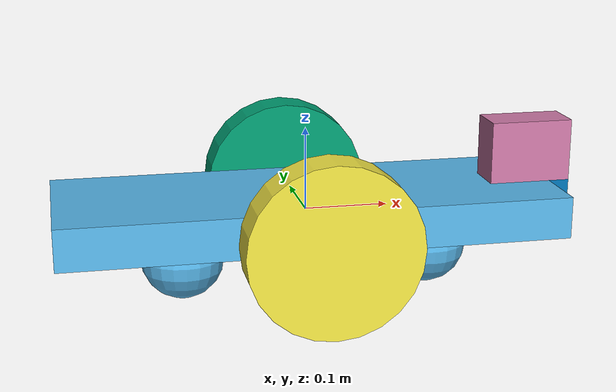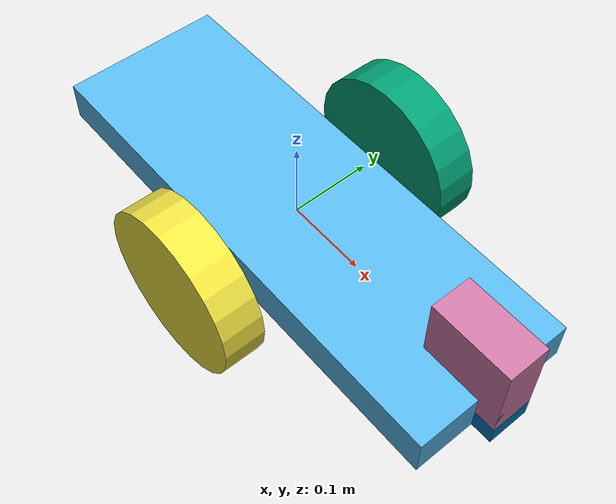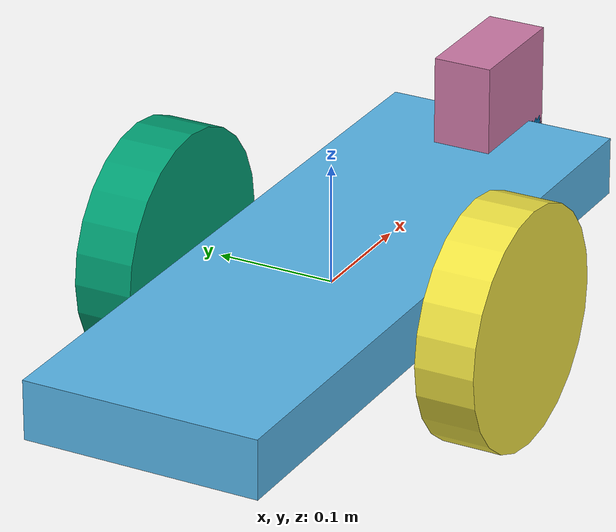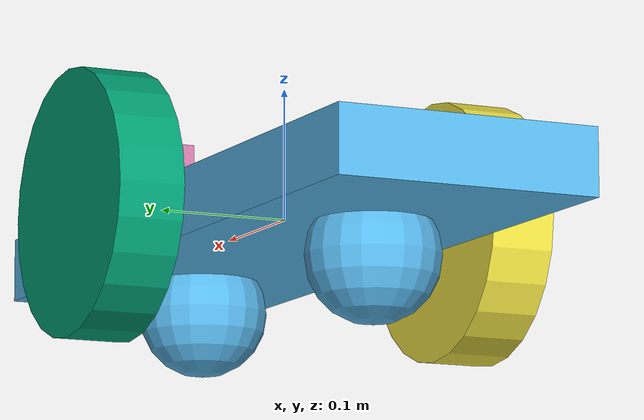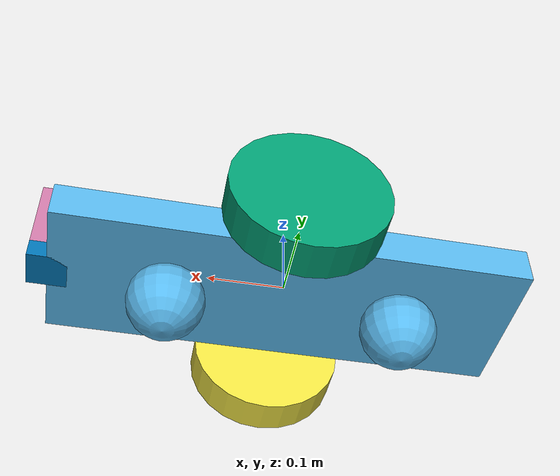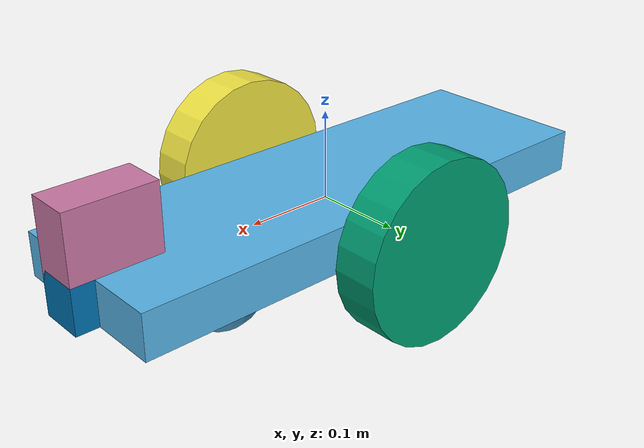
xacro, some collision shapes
<?xml version='1.0'?>
<robot name="my_robot" xmlns:xacro="http://www.ros.org/wiki/xacro">
  <xacro:include filename="$(find my_robot)/urdf/my_robot.gazebo"/>
  <link name="robot_footprint"/>
    <joint name="robot_footprint_joint" type="fixed">
      <origin rpy="0 0 0" xyz="0 0 0"/>
      <parent link="robot_footprint"/>
      <child link="chassis"/>
    </joint>
    <link name="chassis">
    <pose>0 0 0.1 0 0 0</pose>
    <inertial>
      <mass value="15.0"/>
      <origin rpy=" 0 0 0" xyz="0.0 0 0"/>
      <inertia ixx="0.1" ixy="0" ixz="0" iyy="0.1" iyz="0" izz="0.1"/>
    </inertial>
    <collision name="collision">
      <origin rpy=" 0 0 0" xyz="0 0 0"/>
      <geometry>
        <box size=".6 .2 .05"/>
      </geometry>
    </collision>
    <visual name="chassis_visual">
      <origin rpy=" 0 0 0" xyz="0 0 0"/>
      <geometry>
        <box size=".6 .2 .05"/>
      </geometry>
    </visual>
    <collision name="back_caster_collision">
      <origin rpy=" 0 0 0" xyz="-0.15 0 -0.05"/>
      <geometry>
        <sphere radius="0.0499"/>
      </geometry>
    </collision>
    <visual name="back_caster_visual">
      <origin rpy=" 0 0 0" xyz="-0.15 0 -0.05"/>
      <geometry>
        <sphere radius="0.05"/>
      </geometry>
    </visual>
    <collision name="front_caster_collision">
      <origin rpy=" 0 0 0" xyz="0.15 0 -0.05"/>
      <geometry>
        <sphere radius="0.0499"/>
      </geometry>
    </collision>
    <visual name="front_caster_visual">
      <origin rpy=" 0 0 0" xyz="0.15 0 -0.05"/>
      <geometry>
        <sphere radius="0.05"/>
      </geometry>
    </visual>
  </link>

  <!--   wheels  -->

  <link name="left_wheel">
    <inertial>
      <mass value="5"/>
      <origin rpy=" 0 1.5707 1.5707" xyz="0 0 0"/>
      <inertia ixx="0.1" ixy="0" ixz="0" iyy="0.1" iyz="0" izz="0.1"/>
    </inertial>
    <collision name="collision">
      <origin rpy=" 0 1.5707 1.5707" xyz="0 0 0"/>
      <geometry>
        <cylinder length="0.05" radius=".1"/>
      </geometry>
    </collision>
    <visual name="chassis_visual">
      <origin rpy=" 0 1.5707 1.5707" xyz="0 0 0"/>
      <geometry>
        <cylinder length="0.05" radius=".1"/>
      </geometry>
    </visual>
  </link>
  <link name="right_wheel">
    <inertial>
      <mass value="5"/>
      <origin rpy=" 0 1.5707 1.5707" xyz="0 0 0"/>
      <inertia ixx="0.1" ixy="0" ixz="0" iyy="0.1" iyz="0" izz="0.1"/>
    </inertial>
    <collision name="collision">
      <origin rpy=" 0 1.5707 1.5707" xyz="0 0 0"/>
      <geometry>
        <cylinder length="0.05" radius=".1"/>
      </geometry>
    </collision>
    <visual name="chassis_visual">
      <origin rpy=" 0 1.5707 1.5707" xyz="0 0 0"/>
      <geometry>
        <cylinder length="0.05" radius=".1"/>
      </geometry>
    </visual>
  </link>
  <joint name="left_wheel_hinge" type="continuous">
    <origin rpy="0 0 0" xyz="0 0.15 0"/>
    <child link="left_wheel"/>
    <parent link="chassis"/>
    <axis rpy="0 0 0" xyz="0 1 0"/>
    <limit effort="10000" velocity="1000"/>
    <dynamics damping="1.0" friction="1.0"/>
  </joint>
  <joint name="right_wheel_hinge" type="continuous">
    <origin rpy="0 0 0" xyz="0 -0.15 0"/>
    <child link="right_wheel"/>
    <parent link="chassis"/>
    <axis rpy="0 0 0" xyz="0 1 0"/>
    <limit effort="10000" velocity="1000"/>
    <dynamics damping="1.0" friction="1.0"/>
  </joint>

  <link name="camera">
    <inertial>
      <mass value="0.1"/>
      <origin rpy=" 0 0 0" xyz="0 0 0"/>
      <box_inertia m="0.1" x="0.05" y="0.05" z="0.05"/>
      <inertia ixx="1e-6" ixy="0" ixz="0" iyy="1e-6" iyz="0" izz="1e-6"/>
    </inertial>
    <collision name="collision">
      <origin rpy=" 0 0 0" xyz="0 0 0"/>
      <geometry>
        <box size="0.05 0.05 0.05"/>
      </geometry>
    </collision>
    <visual name="chassis_visual">
      <origin rpy=" 0 0 0" xyz="0 0 0"/>
      <geometry>
        <box size="0.05 0.05 0.05"/>
      </geometry>
    </visual>
  </link>

  <joint name="camera_hinge" type="fixed">
    <origin rpy="0 0 0" xyz="0.3 0 0"/>
    <child link="camera"/>
    <parent link="chassis"/>
    <axis rpy="0 0 0" xyz="0 1 0"/>
    <limit effort="10000" velocity="1000"/>
    <dynamics damping="1.0" friction="1.0"/>
  </joint>

  <joint name="camera_optical_joint" type="fixed">
    <origin xyz="0 0 0" rpy="-1.5707 0 -1.5707"/>
    <parent link="camera"/>
    <child link="camera_optical"/>
  </joint>

  <link name="camera_optical">
  </link>

  <link name="hokuyo">
    <inertial>
      <mass value="1e-5"/>
      <origin rpy=" 0 0 0" xyz="0 0 0"/>
      <inertia ixx="1e-6" ixy="0" ixz="0" iyy="1e-6" iyz="0" izz="1e-6"/>
    </inertial>
    <collision name="collision">
      <origin rpy=" 0 0 0" xyz="0 0 0"/>
      <geometry>
        <box size="0.1 0.05 0.1"/>
      </geometry>
    </collision>
    <visual name="chassis_visual">
      <origin rpy=" 0 0 0" xyz="0 0 0"/>
      <geometry>
        <mesh filename="package://my_robot/meshes/hokuyo.dae"/>
      </geometry>
    </visual>
  </link>

  <joint name="hokuyo_joint" type="fixed">
    <origin rpy="0 0 0" xyz="0.275 0 .05"/>
    <child link="hokuyo"/>
    <parent link="chassis"/>
    <axis rpy="0 0 0" xyz="0 1 0"/>
    <limit effort="10000" velocity="1000"/>
    <dynamics damping="1.0" friction="1.0"/>
  </joint>
</robot>
